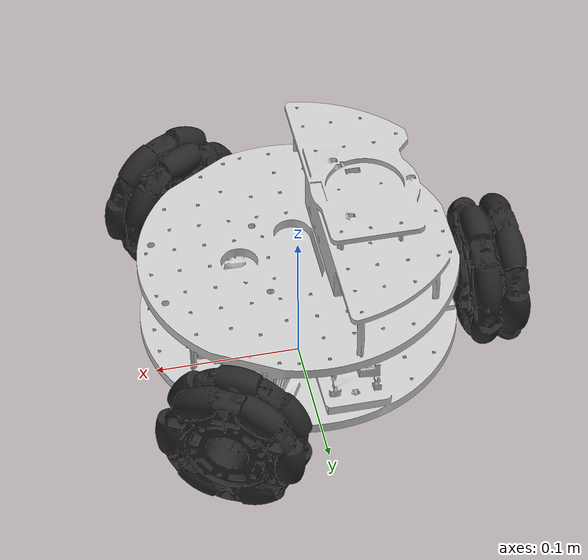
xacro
<?xml version="1.0"?>
<robot xmlns:xacro="http://www.ros.org/wiki/xacro">

  <!-- ============================ Parametres ============================ -->
  <xacro:property name="wheel_radius" value="0.051"/>
  <xacro:property name="wheel_width"  value="0.0425"/>
  <xacro:property name="robot_radius" value="0.132239"/>
  <xacro:property name="wheel_z"      value="0.01036"/>   <!-- offset roue / base_link -->
  <xacro:property name="base_offset_rz" value="${3*pi/2}"/> <!-- rotation du mesh plateau -->
  <xacro:property name="mount_z"      value="0.078"/>     <!-- pont superieur (spot bras SO-101) -->

  <!-- ============================ Materiaux ============================ -->
  <material name="lekiwi_light_grey"><color rgba="0.8 0.8 0.8 1.0"/></material>
  <material name="lekiwi_charcoal"><color rgba="0.15 0.15 0.15 1.0"/></material>
  <material name="lekiwi_orange"><color rgba="0.9 0.45 0.1 1.0"/></material>

  <!-- ===================== Macro inertie cylindre ====================== -->
  <xacro:macro name="cylinder_inertia" params="m r h">
    <inertial>
      <mass value="${m}"/>
      <inertia
        ixx="${m*(3*r*r+h*h)/12}" ixy="0.0" ixz="0.0"
        iyy="${m*(3*r*r+h*h)/12}" iyz="0.0"
        izz="${m*r*r/2}"/>
    </inertial>
  </xacro:macro>

  <!-- ===================== Macro roue omni ============================= -->
  <!-- angle = position angulaire de la roue autour du robot (rad).
       VISUAL = mesh omni_wheel.stl ; COLLISION = cylindre (axe = Z local = radial
       apres rpy="0 pi/2 angle"). -->
  <xacro:macro name="omni_wheel" params="name angle">
    <link name="${name}_link">
      <visual>
        <origin xyz="0 0 0" rpy="0 0 0"/>
        <geometry>
          <mesh filename="package://lekiwi_description/meshes/base/omni_wheel.stl"/>
        </geometry>
        <material name="lekiwi_charcoal"/>
      </visual>
      <collision>
        <origin xyz="0 0 0" rpy="0 0 0"/>
        <geometry><cylinder radius="${wheel_radius}" length="${wheel_width}"/></geometry>
      </collision>
      <xacro:cylinder_inertia m="0.1" r="${wheel_radius}" h="${wheel_width}"/>
    </link>

    <joint name="${name}_joint" type="continuous">
      <parent link="base_link"/>
      <child link="${name}_link"/>
      <origin xyz="${robot_radius*cos(angle)} ${robot_radius*sin(angle)} ${wheel_z}"
              rpy="0 ${pi/2} ${angle}"/>
      <axis xyz="0 0 1"/>
      <limit effort="2.0" velocity="20.0"/>
    </joint>
  </xacro:macro>

  <!-- ============================ base_footprint ======================= -->
  <!-- racine (sans inertie : KDL n'accepte pas d'inertie sur la racine) -->
  <link name="base_footprint"/>

  <joint name="base_footprint_joint" type="fixed">
    <parent link="base_footprint"/>
    <child link="base_link"/>
    <origin xyz="0 0 ${wheel_radius - wheel_z}" rpy="0 0 0"/>
  </joint>

  <!-- ============================ base_link / plateau ================== -->
  <link name="base_link">
    <visual>
      <origin xyz="0 0 0" rpy="0 0 ${base_offset_rz}"/>
      <geometry>
        <mesh filename="package://lekiwi_description/meshes/base/lekiwi_base.stl"/>
      </geometry>
      <material name="lekiwi_light_grey"/>
    </visual>
    <!-- collision : cylindre simple sous la hauteur du LiDAR (pas d'auto-occultation) -->
    <collision>
      <origin xyz="0 0 0.035" rpy="0 0 0"/>
      <geometry><cylinder radius="0.10" length="0.07"/></geometry>
    </collision>
    <xacro:cylinder_inertia m="2.0" r="0.10" h="0.10"/>
  </link>

  <!-- ============================ 3 roues omni ========================= -->
  <xacro:omni_wheel name="left_wheel"  angle="${pi/3}"/>      <!-- 60 deg -->
  <xacro:omni_wheel name="back_wheel"  angle="${pi}"/>        <!-- 180 deg -->
  <xacro:omni_wheel name="right_wheel" angle="${5*pi/3}"/>    <!-- 300 deg -->

  <!-- ============================ IMU BNO055 ========================== -->
  <!-- IMU 9 DoF (fusionnee a l'odometrie roues via EKF, cf. lekiwi_bringup).
       imu_link = mesh ; imu_frame = repere de publication des messages Imu. -->
  <link name="imu_link">
    <visual>
      <origin xyz="0 0 0" rpy="0 0 0"/>
      <geometry>
        <mesh filename="package://lekiwi_description/meshes/base/bno055_imu.stl"/>
      </geometry>
      <material name="lekiwi_charcoal"/>
    </visual>
  </link>

  <joint name="imu_joint" type="fixed">
    <parent link="base_link"/>
    <child link="imu_link"/>
    <origin xyz="-0.044 0 0.08" rpy="0 0 0"/>
  </joint>

  <link name="imu_frame"/>
  <joint name="imu_frame_joint" type="fixed">
    <parent link="imu_link"/>
    <child link="imu_frame"/>
    <origin xyz="0 0 0" rpy="0 0 0"/>
  </joint>

  <!-- ============================ (S20) mount du bras SO-101 ============ -->
  <link name="mount_link"/>
  <joint name="mount_joint" type="fixed">
    <parent link="base_link"/>
    <child link="mount_link"/>
    <origin xyz="0 0 ${mount_z}" rpy="0 0 0"/>
  </joint>

</robot>
